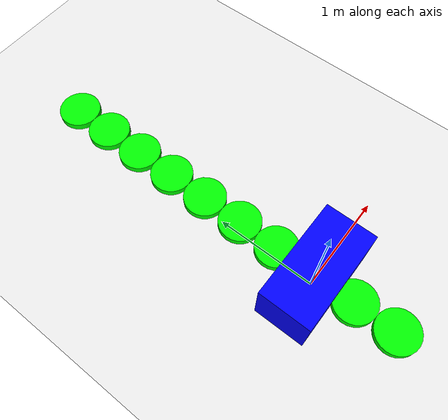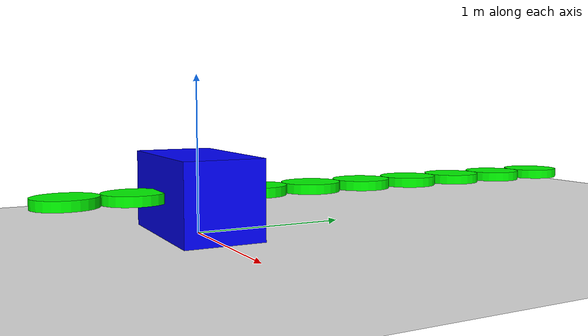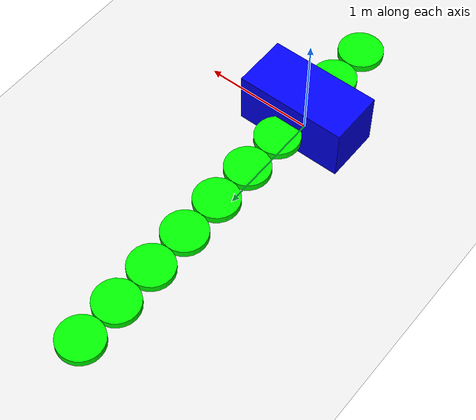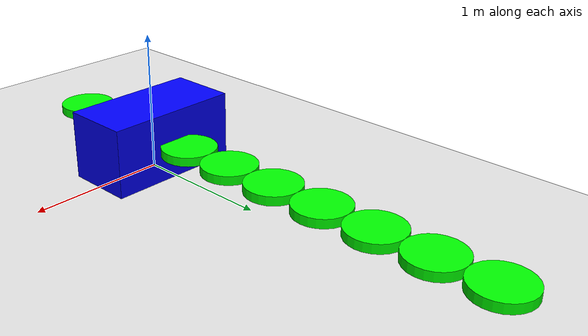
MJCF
<mujoco><worldbody><light diffuse=".5 .5 .5" pos="0 0 3" dir="0 0 -1" /><geom name="ground" type="plane" size="5 5 0.1" rgba=".9 .9 .9 1" /><body name="body"><freejoint name="root" /><geom name="torso" type="box" size="0.5 0.25 0.25" pos="0 0 0.25" rgba="0 0 1 1" mass="0.1" /><body name="wing0" pos="0 0.4 0.25" euler="0 0 90"><joint name="wing0link" type="hinge" axis="0 0 1" range="-1 1" /><geom name="wing0" type="cylinder" size="0.2 0.0325" pos="0 0 0" rgba="0 1 0 1" mass="1" /><body name="wing1" euler="0 0 0"><body name="wing2" euler="0 0 0"><body name="wing3" euler="0 0 0"><body name="wing4" euler="0 0 0"><body name="wing5" euler="0 0 0"><body name="wing6" euler="0 0 0" /><joint name="wing6link" type="hinge" pos="0 0 0" axis="1 0 0" range="-90 90" /><geom name="wing6" type="cylinder" size="0.2 0.0325" pos="2.4000000000000004 0 0" rgba="0 1 0 1" mass="1.5" /></body><joint name="wing5link" type="hinge" pos="0 0 0" axis="1 0 0" range="-17 17" /><geom name="wing5" type="cylinder" size="0.2 0.0325" pos="2.0 0 0" rgba="0 1 0 1" mass="1.5" /></body><joint name="wing4link" type="hinge" pos="0 0 0" axis="1 0 0" range="-10 10" /><geom name="wing4" type="cylinder" size="0.2 0.0325" pos="1.6 0 0" rgba="0 1 0 1" mass="1.5" /></body><joint name="wing3link" type="hinge" pos="0 0 0" axis="1 0 0" range="-58 58" /><geom name="wing3" type="cylinder" size="0.2 0.0325" pos="1.2000000000000002 0 0" rgba="0 1 0 1" mass="1.5" /></body><joint name="wing2link" type="hinge" pos="0 0 0" axis="1 0 0" range="-30 30" /><geom name="wing2" type="cylinder" size="0.2 0.0325" pos="0.8 0 0" rgba="0 1 0 1" mass="1.5" /></body><joint name="wing1link" type="hinge" pos="0 0 0" axis="1 0 0" range="-44 44" /><geom name="wing1" type="cylinder" size="0.2 0.0325" pos="0.4 0 0" rgba="0 1 0 1" mass="1.5" /></body><body name="wingl0" pos="0 -0.4 0.25" euler="0 0 90"><joint name="wingl0link" type="hinge" axis="0 0 1" range="-1 1" /><geom name="wingl0" type="cylinder" size="0.2 0.0325" pos="0 0 0" rgba="0 1 0 1" mass="1" /><body name="wingl1" euler="0 0 0" /><joint name="wingl1link" type="hinge" pos="0 0 0" axis="1 0 0" range="-54 54" /><geom name="wingl1" type="cylinder" size="0.2 0.0325" pos="-0.4 0 0" rgba="0 1 0 1" mass="1.5" /></body></body></worldbody><actuator><motor name="wing0" joint="wing0link" gear="54" /><motor name="wing1" joint="wing1link" gear="98" /><motor name="wing2" joint="wing2link" gear="68" /><motor name="wing3" joint="wing3link" gear="18" /><motor name="wing4" joint="wing4link" gear="62" /><motor name="wing5" joint="wing5link" gear="74" /><motor name="wing6" joint="wing6link" gear="80" /><motor name="wingl0" joint="wingl0link" gear="96" /><motor name="wingl1" joint="wingl1link" gear="29" /></actuator></mujoco>
